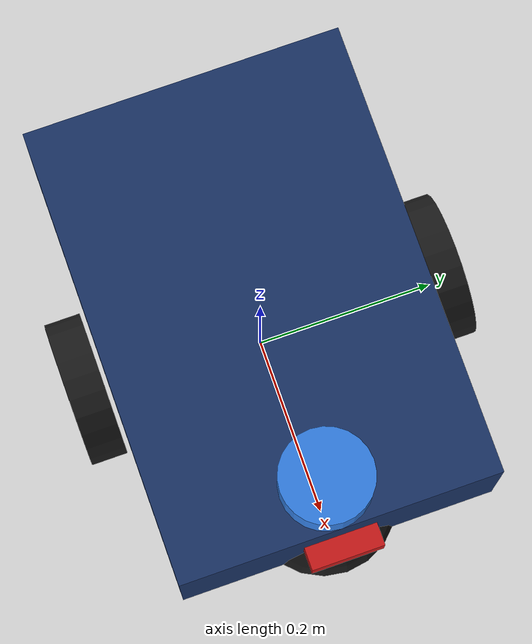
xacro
<?xml version="1.0"?>
<robot xmlns:xacro="http://www.ros.org/wiki/xacro">

  <!-- materials -->
  <material name="base_navy">
    <color rgba="0.1 0.2 0.4 1.0"/>
  </material>

  <material name="wheel_black">
    <color rgba="0.1 0.1 0.1 1.0"/>
  </material>

  <material name="sensor_blue">
    <color rgba="0.2 0.5 0.9 1.0"/>
  </material>

  <material name="sensor_red">
    <color rgba="0.8 0.1 0.1 1.0"/>
  </material>

  <!-- base_footprint on ground (massless root link) -->
  <link name="base_footprint"/>

  <joint name="base_footprint_joint" type="fixed">
    <parent link="base_footprint"/>
    <child link="base_link"/>
    <origin xyz="0 0 0.08" rpy="0 0 0"/>
  </joint>

  <!-- base_link (chassis) -->
  <link name="base_link">
    <visual>
      <origin xyz="0 0 0.075" rpy="0 0 0"/>
      <geometry>
        <box size="0.5 0.35 0.15"/>
      </geometry>
      <material name="base_navy"/>
    </visual>
    <collision>
      <origin xyz="0 0 0.075" rpy="0 0 0"/>
      <geometry>
        <box size="0.5 0.35 0.15"/>
      </geometry>
    </collision>
    <inertial>
      <origin xyz="0 0 0.075" rpy="0 0 0"/>
      <mass value="12.0"/>
      <inertia ixx="0.145" ixy="0.0" ixz="0.0" iyy="0.272" iyz="0.0" izz="0.372"/>
    </inertial>
  </link>

  <!-- left drive wheel -->
  <joint name="left_wheel_joint" type="continuous">
    <parent link="base_link"/>
    <child link="left_wheel_link"/>
    <origin xyz="0 0.20 0" rpy="0 0 0"/>
    <axis xyz="0 1 0"/>
  </joint>

  <link name="left_wheel_link">
    <visual>
      <origin xyz="0 0 0" rpy="1.57079632679 0 0"/>
      <geometry>
        <cylinder radius="0.08" length="0.04"/>
      </geometry>
      <material name="wheel_black"/>
    </visual>
    <collision>
      <origin xyz="0 0 0" rpy="1.57079632679 0 0"/>
      <geometry>
        <cylinder radius="0.08" length="0.04"/>
      </geometry>
    </collision>
    <inertial>
      <origin xyz="0 0 0" rpy="0 0 0"/>
      <mass value="0.8"/>
      <inertia ixx="0.00138" ixy="0.0" ixz="0.0" iyy="0.00256" iyz="0.0" izz="0.00138"/>
    </inertial>
  </link>

  <!-- right drive wheel -->
  <joint name="right_wheel_joint" type="continuous">
    <parent link="base_link"/>
    <child link="right_wheel_link"/>
    <origin xyz="0 -0.20 0" rpy="0 0 0"/>
    <axis xyz="0 1 0"/>
  </joint>

  <link name="right_wheel_link">
    <visual>
      <origin xyz="0 0 0" rpy="1.57079632679 0 0"/>
      <geometry>
        <cylinder radius="0.08" length="0.04"/>
      </geometry>
      <material name="wheel_black"/>
    </visual>
    <collision>
      <origin xyz="0 0 0" rpy="1.57079632679 0 0"/>
      <geometry>
        <cylinder radius="0.08" length="0.04"/>
      </geometry>
    </collision>
    <inertial>
      <origin xyz="0 0 0" rpy="0 0 0"/>
      <mass value="0.8"/>
      <inertia ixx="0.00138" ixy="0.0" ixz="0.0" iyy="0.00256" iyz="0.0" izz="0.00138"/>
    </inertial>
  </link>

  <!-- front caster wheel -->
  <joint name="front_caster_joint" type="fixed">
    <parent link="base_link"/>
    <child link="front_caster_link"/>
    <origin xyz="0.20 0 0" rpy="0 0 0"/>
  </joint>

  <link name="front_caster_link">
    <visual>
      <origin xyz="0 0 0" rpy="0 0 0"/>
      <geometry>
        <sphere radius="0.08"/>
      </geometry>
      <material name="wheel_black"/>
    </visual>
    <collision>
      <origin xyz="0 0 0" rpy="0 0 0"/>
      <geometry>
        <sphere radius="0.08"/>
      </geometry>
    </collision>
    <inertial>
      <origin xyz="0 0 0" rpy="0 0 0"/>
      <mass value="0.4"/>
      <inertia ixx="0.001" ixy="0.0" ixz="0.0" iyy="0.001" iyz="0.0" izz="0.001"/>
    </inertial>
  </link>

  <!-- lidar sensor -->
  <joint name="lidar_joint" type="fixed">
    <parent link="base_link"/>
    <child link="lidar_link"/>
    <origin xyz="0.20 0 0.175" rpy="0 0 0"/>
  </joint>

  <link name="lidar_link">
    <visual>
      <origin xyz="0 0 0" rpy="0 0 0"/>
      <geometry>
        <cylinder radius="0.05" length="0.05"/>
      </geometry>
      <material name="sensor_blue"/>
    </visual>
    <collision>
      <origin xyz="0 0 0" rpy="0 0 0"/>
      <geometry>
        <cylinder radius="0.05" length="0.05"/>
      </geometry>
    </collision>
    <inertial>
      <origin xyz="0 0 0" rpy="0 0 0"/>
      <mass value="0.2"/>
      <inertia ixx="0.00016" ixy="0.0" ixz="0.0" iyy="0.00016" iyz="0.0" izz="0.00025"/>
    </inertial>
  </link>

  <!-- camera sensor -->
  <joint name="camera_joint" type="fixed">
    <parent link="base_link"/>
    <child link="camera_link"/>
    <origin xyz="0.26 0 0.08" rpy="0 0 0"/>
  </joint>

  <link name="camera_link">
    <visual>
      <origin xyz="0 0 0" rpy="0 0 0"/>
      <geometry>
        <box size="0.03 0.08 0.03"/>
      </geometry>
      <material name="sensor_red"/>
    </visual>
    <collision>
      <origin xyz="0 0 0" rpy="0 0 0"/>
      <geometry>
        <box size="0.03 0.08 0.03"/>
      </geometry>
    </collision>
    <inertial>
      <origin xyz="0 0 0" rpy="0 0 0"/>
      <mass value="0.1"/>
      <inertia ixx="0.00006" ixy="0.0" ixz="0.0" iyy="0.00001" iyz="0.0" izz="0.00006"/>
    </inertial>
  </link>

  <!-- imu sensor -->
  <joint name="imu_joint" type="fixed">
    <parent link="base_link"/>
    <child link="imu_link"/>
    <origin xyz="0 0 0.08" rpy="0 0 0"/>
  </joint>

  <link name="imu_link">
    <visual>
      <origin xyz="0 0 0" rpy="0 0 0"/>
      <geometry>
        <box size="0.03 0.03 0.01"/>
      </geometry>
      <material name="sensor_red"/>
    </visual>
    <collision>
      <origin xyz="0 0 0" rpy="0 0 0"/>
      <geometry>
        <box size="0.03 0.03 0.01"/>
      </geometry>
    </collision>
    <inertial>
      <origin xyz="0 0 0" rpy="0 0 0"/>
      <mass value="0.05"/>
      <inertia ixx="0.00001" ixy="0.0" ixz="0.0" iyy="0.00001" iyz="0.0" izz="0.00001"/>
    </inertial>
  </link>

</robot>
